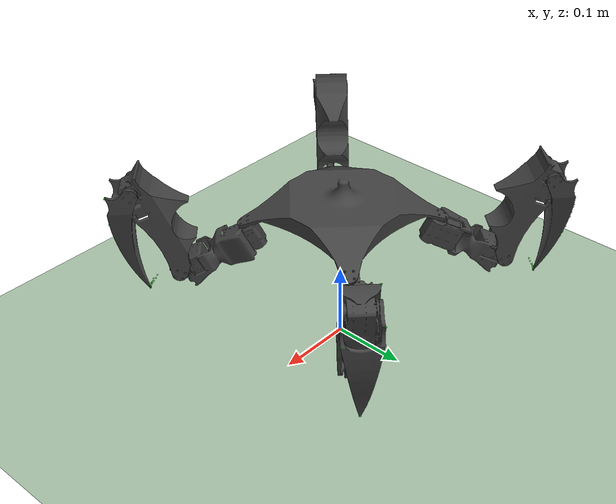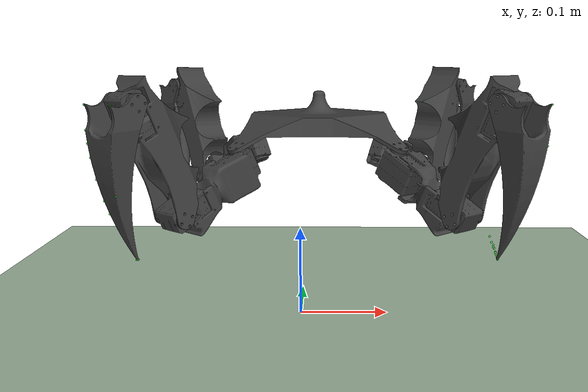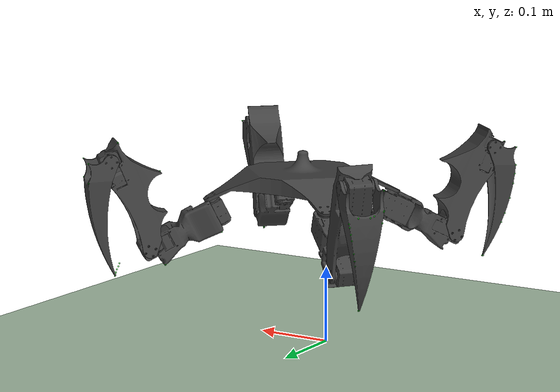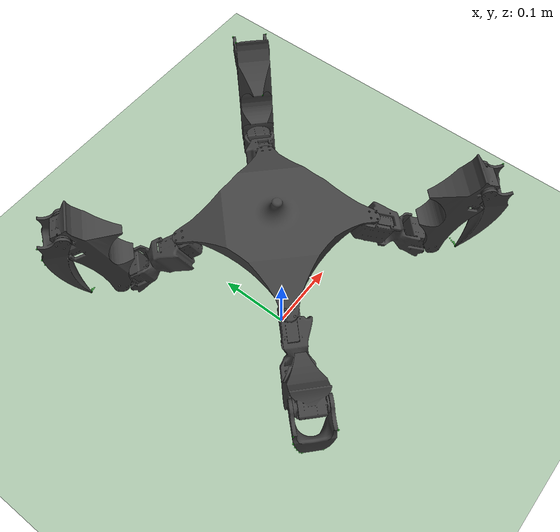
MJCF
<mujoco model="Bot1">
  <compiler angle="radian" meshdir="./" />

  <option timestep="0.002" iterations="50" solver="Newton" tolerance="1e-10">
    <flag contact="enable" gravity="enable" />
  </option>

  <default>
    <joint solimplimit="0.999 0.999 0.001" solreflimit="0.005 1" armature="0.01" />

    <geom friction="1.5 0.005 0.001" solimp="0.95 0.99 0.001" solref="0.002 1" condim="4" />
  </default>

  <asset>
    <mesh name="part_1" content_type="model/stl" file="part_1.stl" />
    <mesh name="part_1__2" content_type="model/stl" file="part_1__2.stl" />
    <mesh name="part_1__3" content_type="model/stl" file="part_1__3.stl" />
    <mesh name="part_1__4" content_type="model/stl" file="part_1__4.stl" />

    <texture name="grid" type="2d" builtin="checker" width="512" height="512" rgb1="0.7 0.8 0.7" rgb2="0.6 0.7 0.6" />
    <material name="grid_mat" texture="grid" texrepeat="20 20" />
  </asset>

  <worldbody>

    <geom name="floor" type="plane" size="10 10 0.1" material="grid_mat" friction="1.5 0.01 0.001" />

    <body name="part_1" pos="0 0 0.2">
      <inertial pos="0.0209601 0.0241499 0.0199273" quat="0.5 0.5 -0.5 0.5" mass="0.552084" diaginertia="0.00201256 0.0010312 0.0010312" />
      <joint name="floor_to_base" type="free" />

      <geom pos="-0.0290399 -0.0153501 0.0106225" quat="1 5.21775e-08 -2.02329e-09 1.35415e-08" type="mesh" rgba="0.25098 0.25098 0.25098 1" mesh="part_1" contype="0" conaffinity="0" />

      <body name="part_1_2" pos="-0.063914 -0.0607244 -0.00112728" quat="0.382923 0.21134 0.0847142 -0.895282">
        <inertial pos="0.0508216 0.00300079 -0.0201979" quat="0.28265 0.663346 0.272142 0.637197" mass="0.139372" diaginertia="0.000187026 0.000186955 2.81071e-05" />
        <joint limited="true" name="sh_roll_1" pos="0 0 0" axis="0 0 1" range="-2.22431 2.10411" />
        <geom pos="-0.595484 -1.2957 0.863499" quat="1.32679e-06 1 0 0" type="mesh" rgba="0.25098 0.25098 0.25098 1" mesh="part_1__2" contype="0" conaffinity="0" />
        <body name="part_1_3" pos="0.1016 -0.0172 -0.0172" quat="-0.487469 0.487469 0.512225 0.512224">
          <inertial pos="0.0786937 -0.0129147 0.0184042" quat="0.466512 0.502695 0.4988 0.529964" mass="0.191635" diaginertia="0.000252901 0.000249902 5.35798e-05" />
          <joint limited="true" name="sh_yaw_1" pos="0 0 0" axis="0 0 1" range="-0.0202957 2.99912" />
          <geom pos="-0.600864 0.882908 1.34578" quat="1.32679e-06 1 0 0" type="mesh" rgba="0.25098 0.25098 0.25098 1" mesh="part_1__3" contype="0" conaffinity="0" />
          <body name="part_1_4" pos="0.1253 0 -0.0007">
            <inertial pos="-0.0423193 0.0357184 0.0189022" quat="0.590331 0.590316 0.389231 0.389275" mass="0.0518909" diaginertia="5.92899e-05 5.27497e-05 1.31168e-05" />
            <joint limited="true" name="kn_yaw_1" pos="0 0 0" axis="0 0 1" range="-1.8675 0" />
            <geom pos="0 0 -0.004" quat="0.566404 0 0 -0.824127" type="mesh" rgba="0.25098 0.25098 0.25098 1" mesh="part_1__4" contype="0" conaffinity="0" />
          <geom name="col_part_1_4_0" type="sphere" size="0.001" pos="-0.1395 0.0544 0.0191" rgba="0 1 0 0.5" /><geom name="col_part_1_4_1" type="sphere" size="0.001" pos="-0.1397 0.0545 0.0191" rgba="0 1 0 0.5" /><geom name="col_part_1_4_11" type="sphere" size="0.001" pos="-0.1399 0.0539 0.0196" rgba="0 1 0 0.5" /><geom name="col_part_1_4_20" type="sphere" size="0.001" pos="-0.0684 0.0531 0.0313" rgba="0 1 0 0.5" /><geom name="col_part_1_4_21" type="sphere" size="0.001" pos="0.0109 0.0268 0.0418" rgba="0 1 0 0.5" /><geom name="col_part_1_4_40" type="sphere" size="0.001" pos="-0.1398 0.0539 0.0183" rgba="0 1 0 0.5" /><geom name="col_part_1_4_41" type="sphere" size="0.001" pos="-0.1401 0.0535 0.0187" rgba="0 1 0 0.5" /><geom name="col_part_1_4_93" type="sphere" size="0.001" pos="-0.1401 0.0535 0.0196" rgba="0 1 0 0.5" /><geom name="col_part_1_4_117" type="sphere" size="0.001" pos="-0.1394 0.0545 0.0188" rgba="0 1 0 0.5" /><geom name="col_part_1_4_118" type="sphere" size="0.001" pos="-0.1395 0.0547 0.0187" rgba="0 1 0 0.5" /><geom name="col_part_1_4_119" type="sphere" size="0.001" pos="-0.0886 0.0556 0.0098" rgba="0 1 0 0.5" /><geom name="col_part_1_4_120" type="sphere" size="0.001" pos="-0.0755 0.0542 0.0076" rgba="0 1 0 0.5" /><geom name="col_part_1_4_121" type="sphere" size="0.001" pos="-0.0545 0.0504 0.0040" rgba="0 1 0 0.5" /><geom name="col_part_1_4_122" type="sphere" size="0.001" pos="-0.0545 0.0505 0.0040" rgba="0 1 0 0.5" /><geom name="col_part_1_4_123" type="sphere" size="0.001" pos="-0.0345 0.0451 0.0005" rgba="0 1 0 0.5" /><geom name="col_part_1_4_124" type="sphere" size="0.001" pos="-0.0221 0.0409 -0.0018" rgba="0 1 0 0.5" /><geom name="col_part_1_4_125" type="sphere" size="0.001" pos="-0.0108 0.0363 -0.0038" rgba="0 1 0 0.5" /><geom name="col_part_1_4_126" type="sphere" size="0.001" pos="0.0110 0.0271 -0.0040" rgba="0 1 0 0.5" /></body>
        </body>
      </body>
      <body name="part_1_5" pos="0.105834 -0.0607243 -0.00112728" quat="0.897395 0.0858871 0.210866 -0.377943">
        <inertial pos="0.0508216 0.00300079 -0.0201979" quat="0.28265 0.663346 0.272142 0.637197" mass="0.139372" diaginertia="0.000187026 0.000186955 2.81071e-05" />
        <joint limited="true" name="sh_roll_2" pos="0 0 0" axis="0 0 1" range="-2.1763 2.12593" />
        <geom pos="-0.595484 -1.2957 0.863499" quat="1.32679e-06 1 0 0" type="mesh" rgba="0.25098 0.25098 0.25098 1" mesh="part_1__2" contype="0" conaffinity="0" />
        <body name="part_1_6" pos="0.1016 -0.0172 -0.0172" quat="-0.486859 0.486859 0.512805 0.512804">
          <inertial pos="0.0786937 -0.0129147 0.0184042" quat="0.466512 0.502695 0.4988 0.529964" mass="0.191635" diaginertia="0.000252901 0.000249902 5.35798e-05" />
          <joint limited="true" name="sh_yaw_2" pos="0 0 0" axis="0 0 1" range="-0.00046306 3.01728" />
          <geom pos="-0.600864 0.882908 1.34578" quat="1.32679e-06 1 0 0" type="mesh" rgba="0.25098 0.25098 0.25098 1" mesh="part_1__3" contype="0" conaffinity="0" />
          <body name="part_1_7" pos="0.1253 0 -0.0007" quat="0.572069 0 0 -0.820205">
            <inertial pos="-0.0181801 -0.0523088 0.0189022" quat="0.706958 0.706995 -0.0135554 -0.0135832" mass="0.0518909" diaginertia="5.929e-05 5.27497e-05 1.31167e-05" />
            <joint limited="true" name="kn_yaw_2" pos="0 0 0" axis="0 0 1" range="-1.89874 0.00367303" />
            <geom pos="0 0 -0.004" quat="1 0 0 0" type="mesh" rgba="0.25098 0.25098 0.25098 1" mesh="part_1__4" contype="0" conaffinity="0" />
          <geom name="col_part_1_7_2" type="sphere" size="0.001" pos="-0.0007 -0.1496 0.0187" rgba="0 1 0 0.5" /><geom name="col_part_1_7_12" type="sphere" size="0.001" pos="-0.0291 0.0006 0.0418" rgba="0 1 0 0.5" /><geom name="col_part_1_7_29" type="sphere" size="0.001" pos="0.0018 -0.1430 0.0174" rgba="0 1 0 0.5" /><geom name="col_part_1_7_31" type="sphere" size="0.001" pos="0.0012 -0.1447 0.0179" rgba="0 1 0 0.5" /><geom name="col_part_1_7_33" type="sphere" size="0.001" pos="0.0005 -0.1464 0.0184" rgba="0 1 0 0.5" /><geom name="col_part_1_7_35" type="sphere" size="0.001" pos="-0.0000 -0.1480 0.0189" rgba="0 1 0 0.5" /><geom name="col_part_1_7_42" type="sphere" size="0.001" pos="-0.0001 -0.1490 0.0193" rgba="0 1 0 0.5" /><geom name="col_part_1_7_43" type="sphere" size="0.001" pos="0.0000 -0.1496 0.0196" rgba="0 1 0 0.5" /><geom name="col_part_1_7_54" type="sphere" size="0.001" pos="0.0054 -0.1363 0.0184" rgba="0 1 0 0.5" /><geom name="col_part_1_7_55" type="sphere" size="0.001" pos="0.0039 -0.1397 0.0186" rgba="0 1 0 0.5" /><geom name="col_part_1_7_56" type="sphere" size="0.001" pos="0.0023 -0.1428 0.0187" rgba="0 1 0 0.5" /><geom name="col_part_1_7_57" type="sphere" size="0.001" pos="0.0008 -0.1459 0.0188" rgba="0 1 0 0.5" /><geom name="col_part_1_7_58" type="sphere" size="0.001" pos="-0.0005 -0.1490 0.0189" rgba="0 1 0 0.5" /><geom name="col_part_1_7_83" type="sphere" size="0.001" pos="-0.0285 0.0006 0.0416" rgba="0 1 0 0.5" /><geom name="col_part_1_7_84" type="sphere" size="0.001" pos="-0.0303 -0.0375 0.0390" rgba="0 1 0 0.5" /><geom name="col_part_1_7_102" type="sphere" size="0.001" pos="0.0114 -0.1297 0.0203" rgba="0 1 0 0.5" /><geom name="col_part_1_7_105" type="sphere" size="0.001" pos="0.0086 -0.1348 0.0200" rgba="0 1 0 0.5" /><geom name="col_part_1_7_106" type="sphere" size="0.001" pos="0.0057 -0.1390 0.0197" rgba="0 1 0 0.5" /><geom name="col_part_1_7_107" type="sphere" size="0.001" pos="0.0031 -0.1429 0.0194" rgba="0 1 0 0.5" /><geom name="col_part_1_7_108" type="sphere" size="0.001" pos="0.0007 -0.1469 0.0190" rgba="0 1 0 0.5" /></body>
        </body>
      </body>
      <body name="part_1_8" pos="0.105834 0.109024 -0.00112726" quat="0.973371 -0.165335 0.156542 -0.0265898">
        <inertial pos="0.030927 0.0404396 -0.0201979" quat="0.523111 0.697014 0.00908574 -0.490351" mass="0.139372" diaginertia="0.000187026 0.000186955 2.8107e-05" />
        <joint limited="true" name="sh_roll_3" pos="0 0 0" axis="0 0 1" range="-2.22029 2.10813" />
        <geom pos="0.592033 -1.29728 0.863499" quat="1.20631e-06 0.909188 0.416385 5.52458e-07" type="mesh" rgba="0.25098 0.25098 0.25098 1" mesh="part_1__2" contype="0" conaffinity="0" />
        <body name="part_1_9" pos="0.0793927 0.0656901 -0.0172" quat="0.642892 -0.642894 -0.294429 0.294428">
          <inertial pos="-0.0182232 -0.0776363 0.0184042" quat="0.705732 0.707663 -0.0267869 0.0209295" mass="0.191635" diaginertia="0.000252901 0.000249902 5.35798e-05" />
          <joint limited="true" name="sh_yaw_3" pos="0 0 0" axis="0 0 1" range="-0.00192597 3.00877" />
          <geom pos="0.921634 0.539587 1.34578" quat="9.05808e-07 0.682704 -0.730695 -9.69483e-07" type="mesh" rgba="0.25098 0.25098 0.25098 1" mesh="part_1__3" contype="0" conaffinity="0" />
          <body name="part_1_10" pos="-0.00849973 -0.125011 -0.0007" quat="0.211057 0 0 0.977474">
            <inertial pos="-0.0181801 -0.0523088 0.0189022" quat="0.706958 0.706995 -0.0135554 -0.0135832" mass="0.0518909" diaginertia="5.929e-05 5.27497e-05 1.31167e-05" />
            <joint limited="true" name="kn_yaw_3" pos="0 0 0" axis="0 0 1" range="-1.86497 0.0123759" />
            <geom pos="0 0 -0.004" quat="1 0 0 0" type="mesh" rgba="0.25098 0.25098 0.25098 1" mesh="part_1__4" contype="0" conaffinity="0" />
          <geom name="col_part_1_10_3" type="sphere" size="0.001" pos="-0.0008 -0.1499 0.0188" rgba="0 1 0 0.5" /><geom name="col_part_1_10_7" type="sphere" size="0.001" pos="-0.0005 -0.1500 0.0195" rgba="0 1 0 0.5" /><geom name="col_part_1_10_8" type="sphere" size="0.001" pos="-0.0004 -0.1500 0.0195" rgba="0 1 0 0.5" /><geom name="col_part_1_10_15" type="sphere" size="0.001" pos="0.0059 -0.1337 0.0210" rgba="0 1 0 0.5" /><geom name="col_part_1_10_16" type="sphere" size="0.001" pos="0.0043 -0.1377 0.0205" rgba="0 1 0 0.5" /><geom name="col_part_1_10_17" type="sphere" size="0.001" pos="0.0024 -0.1416 0.0199" rgba="0 1 0 0.5" /><geom name="col_part_1_10_18" type="sphere" size="0.001" pos="0.0008 -0.1453 0.0193" rgba="0 1 0 0.5" /><geom name="col_part_1_10_19" type="sphere" size="0.001" pos="-0.0005 -0.1492 0.0186" rgba="0 1 0 0.5" /><geom name="col_part_1_10_26" type="sphere" size="0.001" pos="-0.0289 0.0006 -0.0039" rgba="0 1 0 0.5" /><geom name="col_part_1_10_30" type="sphere" size="0.001" pos="0.0007 -0.1457 0.0196" rgba="0 1 0 0.5" /><geom name="col_part_1_10_32" type="sphere" size="0.001" pos="0.0004 -0.1467 0.0193" rgba="0 1 0 0.5" /><geom name="col_part_1_10_34" type="sphere" size="0.001" pos="-0.0000 -0.1479 0.0189" rgba="0 1 0 0.5" /><geom name="col_part_1_10_36" type="sphere" size="0.001" pos="-0.0004 -0.1490 0.0186" rgba="0 1 0 0.5" /><geom name="col_part_1_10_85" type="sphere" size="0.001" pos="-0.0301 -0.0233 -0.0036" rgba="0 1 0 0.5" /><geom name="col_part_1_10_86" type="sphere" size="0.001" pos="-0.0301 -0.0244 0.0411" rgba="0 1 0 0.5" /><geom name="col_part_1_10_87" type="sphere" size="0.001" pos="-0.0292 0.0006 0.0418" rgba="0 1 0 0.5" /><geom name="col_part_1_10_90" type="sphere" size="0.001" pos="-0.0005 -0.1494 0.0184" rgba="0 1 0 0.5" /><geom name="col_part_1_10_91" type="sphere" size="0.001" pos="-0.0006 -0.1496 0.0184" rgba="0 1 0 0.5" /><geom name="col_part_1_10_92" type="sphere" size="0.001" pos="-0.0005 -0.1500 0.0195" rgba="0 1 0 0.5" /></body>
        <geom name="col_part_1_9_14" type="sphere" size="0.001" pos="0.0073 0.0053 -0.0022" rgba="0 1 0 0.5" /><geom name="col_part_1_9_27" type="sphere" size="0.001" pos="-0.0590 -0.0792 0.0125" rgba="0 1 0 0.5" /><geom name="col_part_1_9_28" type="sphere" size="0.001" pos="-0.0595 -0.0794 0.0123" rgba="0 1 0 0.5" /><geom name="col_part_1_9_74" type="sphere" size="0.001" pos="-0.0269 -0.1430 0.0399" rgba="0 1 0 0.5" /><geom name="col_part_1_9_75" type="sphere" size="0.001" pos="-0.0270 -0.1435 0.0400" rgba="0 1 0 0.5" /></body>
      <geom name="col_part_1_8_9" type="sphere" size="0.001" pos="0.0454 0.0842 -0.0425" rgba="0 1 0 0.5" /><geom name="col_part_1_8_10" type="sphere" size="0.001" pos="0.0454 0.0843 -0.0426" rgba="0 1 0 0.5" /><geom name="col_part_1_8_13" type="sphere" size="0.001" pos="0.0805 0.0750 -0.0259" rgba="0 1 0 0.5" /><geom name="col_part_1_8_45" type="sphere" size="0.001" pos="0.0734 0.0587 -0.0419" rgba="0 1 0 0.5" /><geom name="col_part_1_8_46" type="sphere" size="0.001" pos="0.0718 0.0571 -0.0420" rgba="0 1 0 0.5" /><geom name="col_part_1_8_47" type="sphere" size="0.001" pos="0.0302 0.0162 -0.0394" rgba="0 1 0 0.5" /><geom name="col_part_1_8_48" type="sphere" size="0.001" pos="0.0301 0.0164 -0.0396" rgba="0 1 0 0.5" /><geom name="col_part_1_8_49" type="sphere" size="0.001" pos="0.0053 -0.0078 -0.0372" rgba="0 1 0 0.5" /><geom name="col_part_1_8_53" type="sphere" size="0.001" pos="0.0031 -0.0089 -0.0372" rgba="0 1 0 0.5" /><geom name="col_part_1_8_96" type="sphere" size="0.001" pos="0.0445 0.0840 -0.0424" rgba="0 1 0 0.5" /><geom name="col_part_1_8_97" type="sphere" size="0.001" pos="-0.0114 0.0237 -0.0395" rgba="0 1 0 0.5" /><geom name="col_part_1_8_98" type="sphere" size="0.001" pos="-0.0114 0.0236 -0.0395" rgba="0 1 0 0.5" /></body>
      <body name="part_1_11" pos="-0.0639141 0.109024 -0.00112726" quat="0.344134 -0.207508 0.0937099 0.910895">
        <inertial pos="0.0508216 0.00300079 -0.0201979" quat="0.28265 0.663346 0.272142 0.637197" mass="0.139372" diaginertia="0.000187026 0.000186955 2.81071e-05" />
        <joint limited="true" name="sh_roll_4" pos="0 0 0" axis="0 0 1" range="-2.2539 2.0686" />
        <geom pos="-0.595484 -1.2957 0.863499" quat="1.32679e-06 1 0 0" type="mesh" rgba="0.25098 0.25098 0.25098 1" mesh="part_1__2" contype="0" conaffinity="0" />
        <body name="part_1_12" pos="0.1016 -0.0172 -0.0172" quat="0.707105 -0.707108 0 0">
          <inertial pos="-0.0174934 -0.077804 0.0184042" quat="0.705627 0.70778 -0.0234651 0.024243" mass="0.191635" diaginertia="0.000252901 0.000249902 5.35797e-05" />
          <joint limited="true" name="sh_yaw_4" pos="0 0 0" axis="0 0 1" range="-0.00288512 3.0168" />
          <geom pos="0.916527 0.548217 1.34578" quat="9.10349e-07 0.686127 -0.727482 -9.6522e-07" type="mesh" rgba="0.25098 0.25098 0.25098 1" mesh="part_1__3" contype="0" conaffinity="0" />
          <body name="part_1_13" pos="-0.00732563 -0.125086 -0.0007" quat="0.686127 0 0 -0.727482">
            <inertial pos="-0.0422016 0.0358574 0.0189022" quat="0.590971 0.590956 0.38826 0.388304" mass="0.0518909" diaginertia="5.929e-05 5.27497e-05 1.31167e-05" />
            <joint limited="true" name="kn_yaw_4" pos="0 0 0" axis="0 0 1" range="-1.84416 0.0207427" />
            <geom pos="0 0 -0.004" quat="0.565052 0 0 -0.825055" type="mesh" rgba="0.25098 0.25098 0.25098 1" mesh="part_1__4" contype="0" conaffinity="0" />
          <geom name="col_part_1_13_4" type="sphere" size="0.001" pos="-0.1391 0.0544 0.0184" rgba="0 1 0 0.5" /><geom name="col_part_1_13_5" type="sphere" size="0.001" pos="-0.1394 0.0545 0.0184" rgba="0 1 0 0.5" /><geom name="col_part_1_13_6" type="sphere" size="0.001" pos="-0.1396 0.0546 0.0183" rgba="0 1 0 0.5" /><geom name="col_part_1_13_37" type="sphere" size="0.001" pos="-0.1385 0.0541 0.0189" rgba="0 1 0 0.5" /><geom name="col_part_1_13_38" type="sphere" size="0.001" pos="-0.1390 0.0545 0.0189" rgba="0 1 0 0.5" /><geom name="col_part_1_13_39" type="sphere" size="0.001" pos="-0.1395 0.0550 0.0188" rgba="0 1 0 0.5" /><geom name="col_part_1_13_44" type="sphere" size="0.001" pos="-0.1397 0.0542 0.0182" rgba="0 1 0 0.5" /><geom name="col_part_1_13_59" type="sphere" size="0.001" pos="-0.0738 0.0536 0.0076" rgba="0 1 0 0.5" /><geom name="col_part_1_13_60" type="sphere" size="0.001" pos="-0.0672 0.0529 0.0064" rgba="0 1 0 0.5" /><geom name="col_part_1_13_61" type="sphere" size="0.001" pos="-0.0576 0.0514 0.0048" rgba="0 1 0 0.5" /><geom name="col_part_1_13_62" type="sphere" size="0.001" pos="-0.0416 0.0475 0.0020" rgba="0 1 0 0.5" /><geom name="col_part_1_13_63" type="sphere" size="0.001" pos="-0.0343 0.0453 0.0007" rgba="0 1 0 0.5" /><geom name="col_part_1_13_64" type="sphere" size="0.001" pos="-0.0261 0.0425 -0.0007" rgba="0 1 0 0.5" /><geom name="col_part_1_13_65" type="sphere" size="0.001" pos="-0.0219 0.0410 -0.0015" rgba="0 1 0 0.5" /><geom name="col_part_1_13_66" type="sphere" size="0.001" pos="-0.0219 0.0411 -0.0015" rgba="0 1 0 0.5" /><geom name="col_part_1_13_67" type="sphere" size="0.001" pos="-0.0165 0.0389 0.0100" rgba="0 1 0 0.5" /><geom name="col_part_1_13_68" type="sphere" size="0.001" pos="-0.0172 0.0392 0.0245" rgba="0 1 0 0.5" /><geom name="col_part_1_13_69" type="sphere" size="0.001" pos="-0.0157 0.0386 0.0293" rgba="0 1 0 0.5" /><geom name="col_part_1_13_70" type="sphere" size="0.001" pos="-0.0118 0.0369 0.0411" rgba="0 1 0 0.5" /><geom name="col_part_1_13_71" type="sphere" size="0.001" pos="-0.0240 0.0418 0.0390" rgba="0 1 0 0.5" /><geom name="col_part_1_13_72" type="sphere" size="0.001" pos="-0.0108 0.0366 0.0414" rgba="0 1 0 0.5" /><geom name="col_part_1_13_73" type="sphere" size="0.001" pos="0.0111 0.0271 0.0418" rgba="0 1 0 0.5" /><geom name="col_part_1_13_78" type="sphere" size="0.001" pos="-0.1268 0.0421 0.0224" rgba="0 1 0 0.5" /><geom name="col_part_1_13_79" type="sphere" size="0.001" pos="-0.1300 0.0453 0.0215" rgba="0 1 0 0.5" /><geom name="col_part_1_13_80" type="sphere" size="0.001" pos="-0.1328 0.0483 0.0206" rgba="0 1 0 0.5" /><geom name="col_part_1_13_81" type="sphere" size="0.001" pos="-0.1356 0.0512 0.0197" rgba="0 1 0 0.5" /><geom name="col_part_1_13_82" type="sphere" size="0.001" pos="-0.1384 0.0539 0.0187" rgba="0 1 0 0.5" /><geom name="col_part_1_13_113" type="sphere" size="0.001" pos="-0.1320 0.0485 0.0192" rgba="0 1 0 0.5" /><geom name="col_part_1_13_114" type="sphere" size="0.001" pos="-0.1339 0.0501 0.0191" rgba="0 1 0 0.5" /><geom name="col_part_1_13_115" type="sphere" size="0.001" pos="-0.1357 0.0516 0.0190" rgba="0 1 0 0.5" /><geom name="col_part_1_13_116" type="sphere" size="0.001" pos="-0.1372 0.0530 0.0189" rgba="0 1 0 0.5" /></body>
        </body>
      </body>
    </body>
  </worldbody>

  <actuator>

    <motor name="sh_roll_1_motor" joint="sh_roll_1" gear="3" ctrlrange="-10 10" />
    <motor name="sh_yaw_1_motor" joint="sh_yaw_1" gear="3" ctrlrange="-10 10" />
    <motor name="kn_yaw_1_motor" joint="kn_yaw_1" gear="3" ctrlrange="-10 10" />

    <motor name="sh_roll_2_motor" joint="sh_roll_2" gear="3" ctrlrange="-10 10" />
    <motor name="sh_yaw_2_motor" joint="sh_yaw_2" gear="3" ctrlrange="-10 10" />
    <motor name="kn_yaw_2_motor" joint="kn_yaw_2" gear="3" ctrlrange="-10 10" />

    <motor name="sh_roll_3_motor" joint="sh_roll_3" gear="3" ctrlrange="-10 10" />
    <motor name="sh_yaw_3_motor" joint="sh_yaw_3" gear="3" ctrlrange="-10 10" />
    <motor name="kn_yaw_3_motor" joint="kn_yaw_3" gear="3" ctrlrange="-10 10" />

    <motor name="sh_roll_4_motor" joint="sh_roll_4" gear="3" ctrlrange="-10 10" />
    <motor name="sh_yaw_4_motor" joint="sh_yaw_4" gear="3" ctrlrange="-10 10" />
    <motor name="kn_yaw_4_motor" joint="kn_yaw_4" gear="3" ctrlrange="-10 10" />
  </actuator>
</mujoco>
